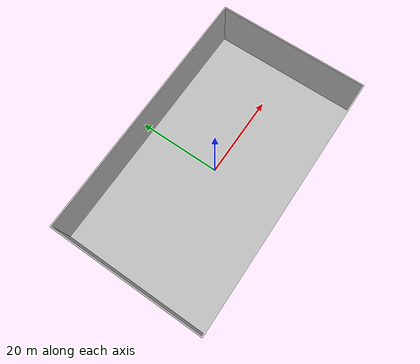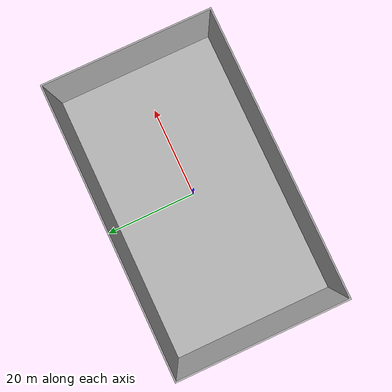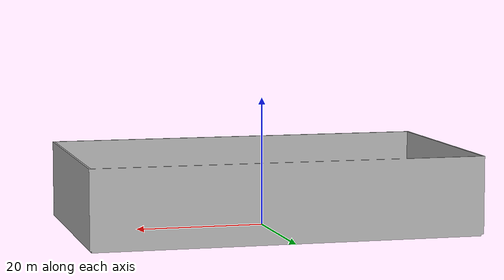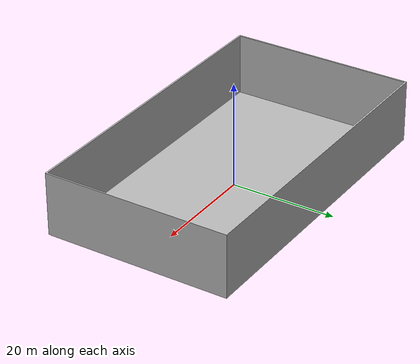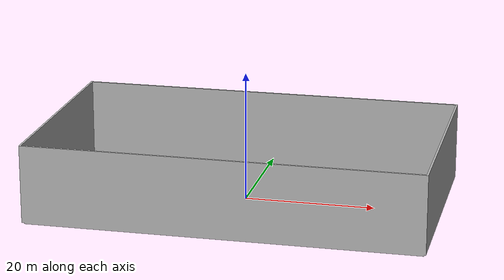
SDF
<?xml version="1.0"?>
<sdf version="1.7">
  <model name="hall_shell">
    <static>true</static>
    <link name="link">
      <visual name="visual">
        <geometry>
          <mesh><uri>model://hall_shell/meshes/hall_shell.obj</uri><scale>1 1 1</scale></mesh>
        </geometry>
      </visual>
      <collision name="collision">
        <geometry>
          <mesh><uri>model://hall_shell/meshes/hall_shell.obj</uri><scale>1 1 1</scale></mesh>
        </geometry>
      </collision>
    </link>
  </model>
</sdf>
